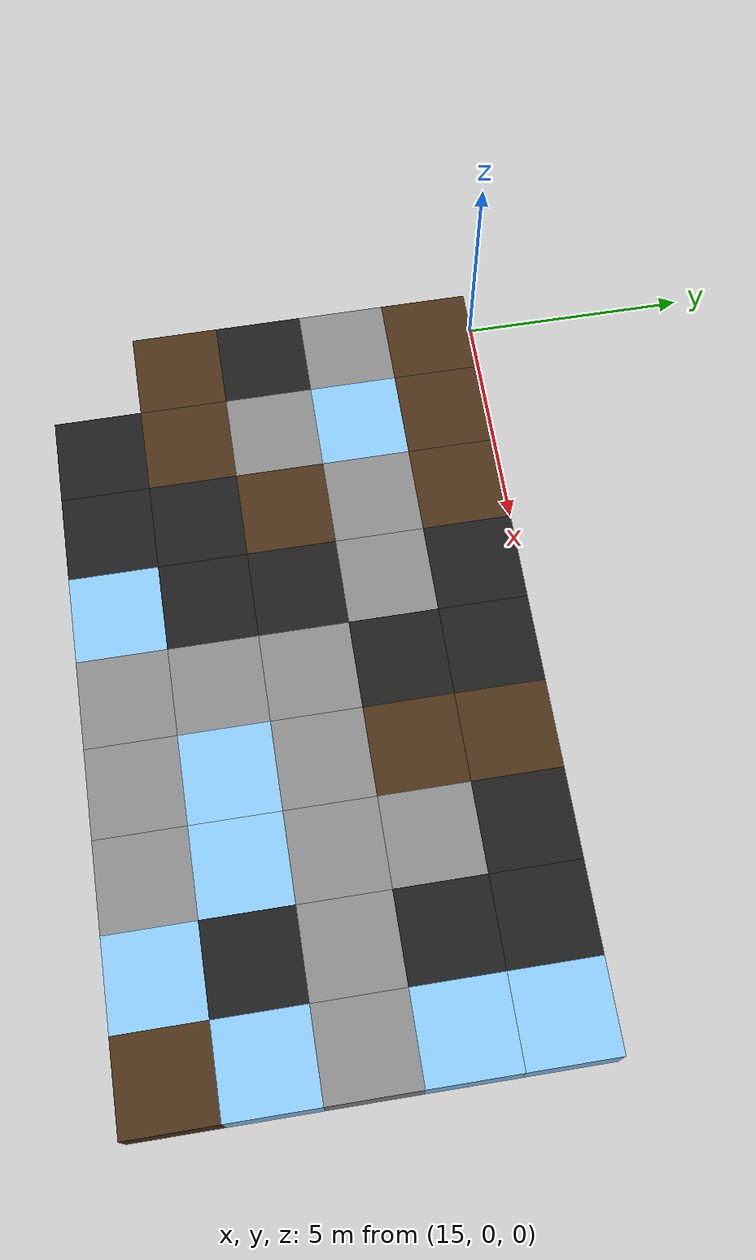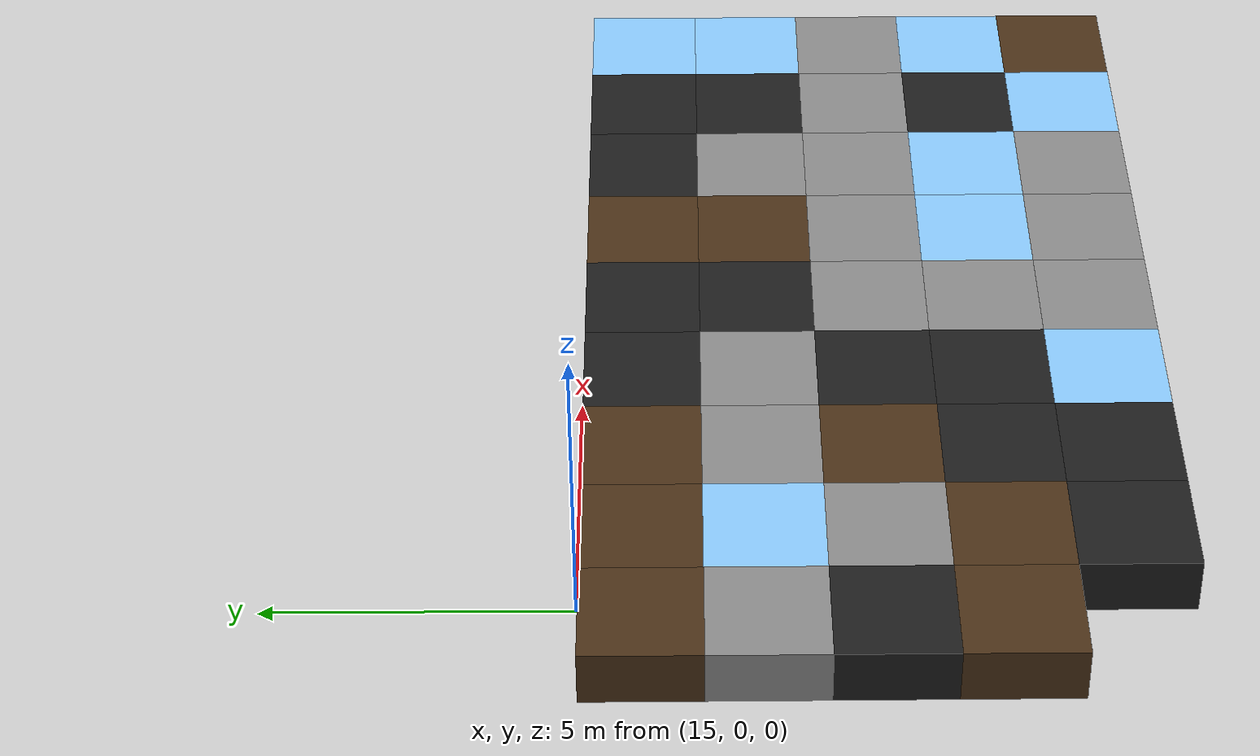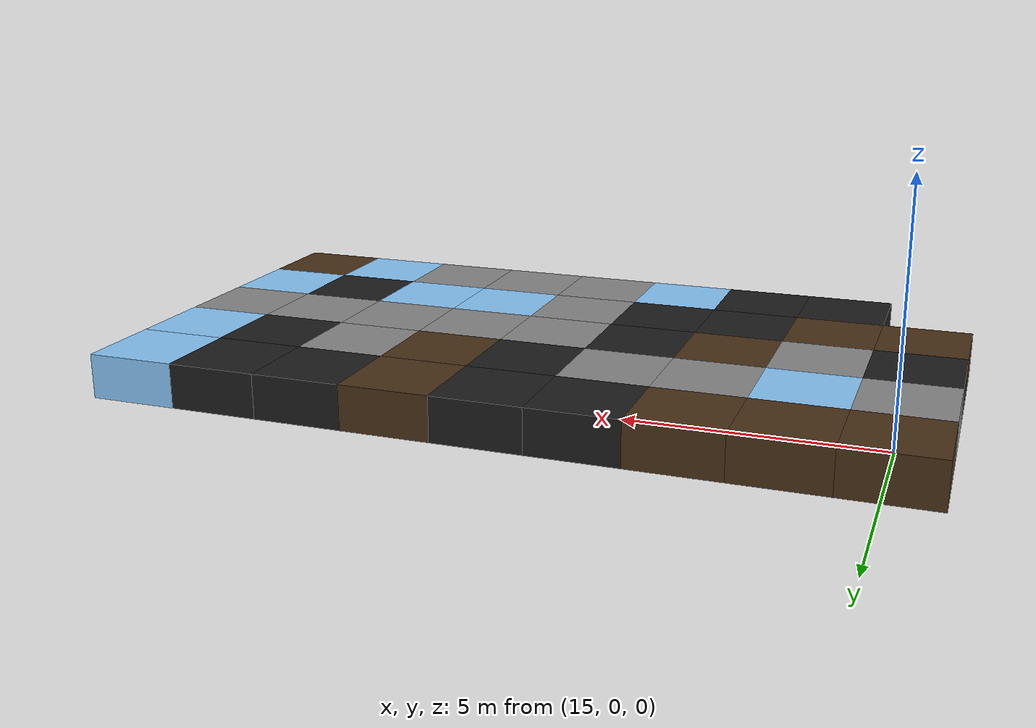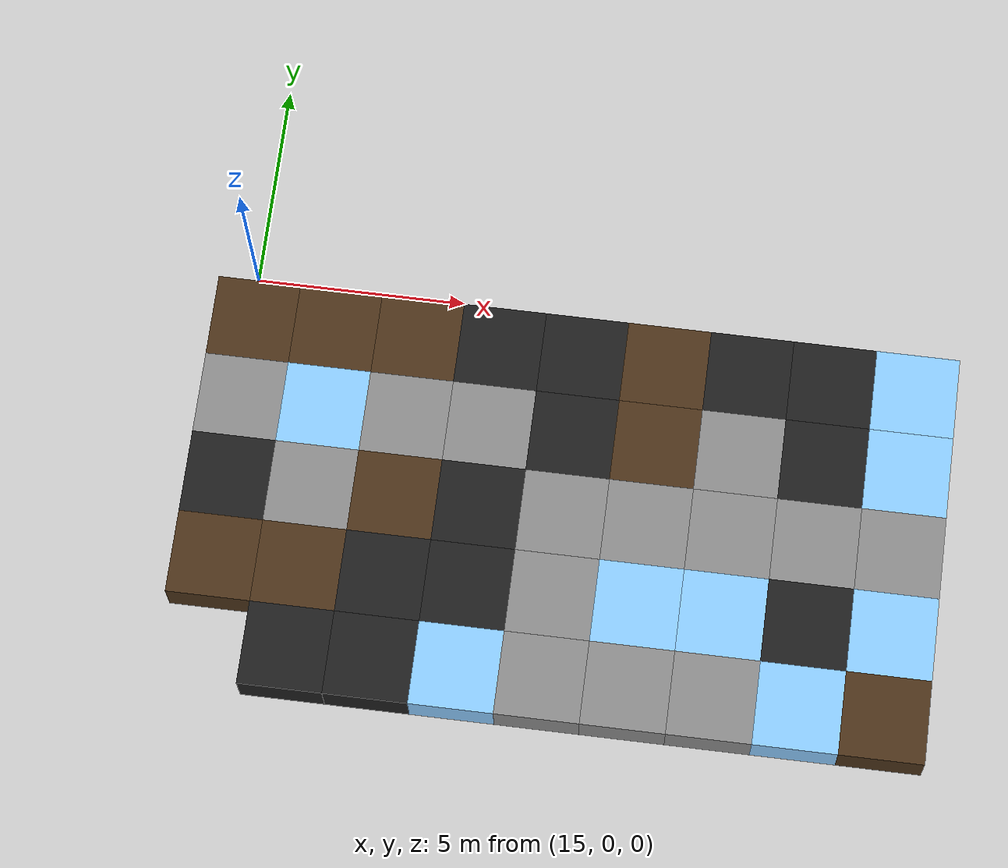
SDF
<sdf version="1.5">
 <world name="squares_example">
  <model name="tile_24_11">
   <static>true</static>
   <pose>17.000 -9.000 -0.500 0 0 0</pose>
   <link name="link">
    <collision name="col">
     <geometry><box><size>2.0 2.0 1.0</size></box></geometry>
     <surface>
      <friction>
       <ode><mu>0.4</mu><mu2>0.15</mu2><fdir1>1 0 0</fdir1><slip1>0.0</slip1><slip2>0.0</slip2></ode>
       <torsional>
        <coefficient>0.03</coefficient>
        <use_patch_radius>false</use_patch_radius>
        <surface_radius>0.12</surface_radius>
        <ode><slip>0.0</slip></ode>
       </torsional>
      </friction>
      <bounce><restitution_coefficient>0.0</restitution_coefficient><threshold>0.1</threshold></bounce>
      <contact>
       <ode><kp>1000000000.0</kp><kd>1000000.0</kd><max_vel>0.01</max_vel><min_depth>0.0</min_depth></ode>
      </contact>
     </surface>
    </collision>
    <visual name="visual">
     <geometry><box><size>2.0 2.0 1.0</size></box></geometry>
     <material>
      <diffuse>0.12 0.12 0.12 1</diffuse>
      <ambient>0 0 0 0</ambient>
      <specular>0 0 0 1</specular>
      <emissive>0 0 0 1</emissive>
     </material>
    </visual>
   </link>
  </model>
  <model name="tile_25_11">
   <static>true</static>
   <pose>19.000 -9.000 -0.500 0 0 0</pose>
   <link name="link">
    <collision name="col">
     <geometry><box><size>2.0 2.0 1.0</size></box></geometry>
     <surface>
      <friction>
       <ode><mu>0.4</mu><mu2>0.15</mu2><fdir1>1 0 0</fdir1><slip1>0.0</slip1><slip2>0.0</slip2></ode>
       <torsional>
        <coefficient>0.03</coefficient>
        <use_patch_radius>false</use_patch_radius>
        <surface_radius>0.12</surface_radius>
        <ode><slip>0.0</slip></ode>
       </torsional>
      </friction>
      <bounce><restitution_coefficient>0.0</restitution_coefficient><threshold>0.1</threshold></bounce>
      <contact>
       <ode><kp>1000000000.0</kp><kd>1000000.0</kd><max_vel>0.01</max_vel><min_depth>0.0</min_depth></ode>
      </contact>
     </surface>
    </collision>
    <visual name="visual">
     <geometry><box><size>2.0 2.0 1.0</size></box></geometry>
     <material>
      <diffuse>0.12 0.12 0.12 1</diffuse>
      <ambient>0 0 0 0</ambient>
      <specular>0 0 0 1</specular>
      <emissive>0 0 0 1</emissive>
     </material>
    </visual>
   </link>
  </model>
  <model name="tile_26_11">
   <static>true</static>
   <pose>21.000 -9.000 -0.500 0 0 0</pose>
   <link name="link">
    <collision name="col">
     <geometry><box><size>2.0 2.0 1.0</size></box></geometry>
     <surface>
      <friction>
       <ode><mu>0.03</mu><mu2>0.02</mu2><fdir1>1 0 0</fdir1><slip1>0.03</slip1><slip2>0.03</slip2></ode>
       <torsional>
        <coefficient>0.005</coefficient>
        <use_patch_radius>false</use_patch_radius>
        <surface_radius>0.12</surface_radius>
        <ode><slip>0.01</slip></ode>
       </torsional>
      </friction>
      <bounce><restitution_coefficient>0.0</restitution_coefficient><threshold>0.1</threshold></bounce>
      <contact>
       <ode><kp>10000000.0</kp><kd>1000.0</kd><max_vel>0.01</max_vel><min_depth>0.0</min_depth></ode>
      </contact>
     </surface>
    </collision>
    <visual name="visual">
     <geometry><box><size>2.0 2.0 1.0</size></box></geometry>
     <material>
      <diffuse>0.55 0.80 1.00 1</diffuse>
      <ambient>0 0 0 0</ambient>
      <specular>0 0 0 1</specular>
      <emissive>0 0 0 1</emissive>
     </material>
    </visual>
   </link>
  </model>
  <model name="tile_27_11">
   <static>true</static>
   <pose>23.000 -9.000 -0.500 0 0 0</pose>
   <link name="link">
    <collision name="col">
     <geometry><box><size>2.0 2.0 1.0</size></box></geometry>
     <surface>
      <friction>
       <ode><mu>0.8</mu><mu2>0.3</mu2><fdir1>1 0 0</fdir1><slip1>0.0</slip1><slip2>0.0</slip2></ode>
       <torsional>
        <coefficient>0.03</coefficient>
        <use_patch_radius>false</use_patch_radius>
        <surface_radius>0.12</surface_radius>
        <ode><slip>0.0</slip></ode>
       </torsional>
      </friction>
      <bounce><restitution_coefficient>0.0</restitution_coefficient><threshold>0.1</threshold></bounce>
      <contact>
       <ode><kp>10000000000.0</kp><kd>10000000.0</kd><max_vel>0.01</max_vel><min_depth>0.0</min_depth></ode>
      </contact>
     </surface>
    </collision>
    <visual name="visual">
     <geometry><box><size>2.0 2.0 1.0</size></box></geometry>
     <material>
      <diffuse>0.55 0.55 0.55 1</diffuse>
      <ambient>0 0 0 0</ambient>
      <specular>0 0 0 1</specular>
      <emissive>0 0 0 1</emissive>
     </material>
    </visual>
   </link>
  </model>
  <model name="tile_28_11">
   <static>true</static>
   <pose>25.000 -9.000 -0.500 0 0 0</pose>
   <link name="link">
    <collision name="col">
     <geometry><box><size>2.0 2.0 1.0</size></box></geometry>
     <surface>
      <friction>
       <ode><mu>0.8</mu><mu2>0.3</mu2><fdir1>1 0 0</fdir1><slip1>0.0</slip1><slip2>0.0</slip2></ode>
       <torsional>
        <coefficient>0.03</coefficient>
        <use_patch_radius>false</use_patch_radius>
        <surface_radius>0.12</surface_radius>
        <ode><slip>0.0</slip></ode>
       </torsional>
      </friction>
      <bounce><restitution_coefficient>0.0</restitution_coefficient><threshold>0.1</threshold></bounce>
      <contact>
       <ode><kp>10000000000.0</kp><kd>10000000.0</kd><max_vel>0.01</max_vel><min_depth>0.0</min_depth></ode>
      </contact>
     </surface>
    </collision>
    <visual name="visual">
     <geometry><box><size>2.0 2.0 1.0</size></box></geometry>
     <material>
      <diffuse>0.55 0.55 0.55 1</diffuse>
      <ambient>0 0 0 0</ambient>
      <specular>0 0 0 1</specular>
      <emissive>0 0 0 1</emissive>
     </material>
    </visual>
   </link>
  </model>
  <model name="tile_29_11">
   <static>true</static>
   <pose>27.000 -9.000 -0.500 0 0 0</pose>
   <link name="link">
    <collision name="col">
     <geometry><box><size>2.0 2.0 1.0</size></box></geometry>
     <surface>
      <friction>
       <ode><mu>0.8</mu><mu2>0.3</mu2><fdir1>1 0 0</fdir1><slip1>0.0</slip1><slip2>0.0</slip2></ode>
       <torsional>
        <coefficient>0.03</coefficient>
        <use_patch_radius>false</use_patch_radius>
        <surface_radius>0.12</surface_radius>
        <ode><slip>0.0</slip></ode>
       </torsional>
      </friction>
      <bounce><restitution_coefficient>0.0</restitution_coefficient><threshold>0.1</threshold></bounce>
      <contact>
       <ode><kp>10000000000.0</kp><kd>10000000.0</kd><max_vel>0.01</max_vel><min_depth>0.0</min_depth></ode>
      </contact>
     </surface>
    </collision>
    <visual name="visual">
     <geometry><box><size>2.0 2.0 1.0</size></box></geometry>
     <material>
      <diffuse>0.55 0.55 0.55 1</diffuse>
      <ambient>0 0 0 0</ambient>
      <specular>0 0 0 1</specular>
      <emissive>0 0 0 1</emissive>
     </material>
    </visual>
   </link>
  </model>
  <model name="tile_30_11">
   <static>true</static>
   <pose>29.000 -9.000 -0.500 0 0 0</pose>
   <link name="link">
    <collision name="col">
     <geometry><box><size>2.0 2.0 1.0</size></box></geometry>
     <surface>
      <friction>
       <ode><mu>0.03</mu><mu2>0.02</mu2><fdir1>1 0 0</fdir1><slip1>0.03</slip1><slip2>0.03</slip2></ode>
       <torsional>
        <coefficient>0.005</coefficient>
        <use_patch_radius>false</use_patch_radius>
        <surface_radius>0.12</surface_radius>
        <ode><slip>0.01</slip></ode>
       </torsional>
      </friction>
      <bounce><restitution_coefficient>0.0</restitution_coefficient><threshold>0.1</threshold></bounce>
      <contact>
       <ode><kp>10000000.0</kp><kd>1000.0</kd><max_vel>0.01</max_vel><min_depth>0.0</min_depth></ode>
      </contact>
     </surface>
    </collision>
    <visual name="visual">
     <geometry><box><size>2.0 2.0 1.0</size></box></geometry>
     <material>
      <diffuse>0.55 0.80 1.00 1</diffuse>
      <ambient>0 0 0 0</ambient>
      <specular>0 0 0 1</specular>
      <emissive>0 0 0 1</emissive>
     </material>
    </visual>
   </link>
  </model>
  <model name="tile_31_11">
   <static>true</static>
   <pose>31.000 -9.000 -0.500 0 0 0</pose>
   <link name="link">
    <collision name="col">
     <geometry><box><size>2.0 2.0 1.0</size></box></geometry>
     <surface>
      <friction>
       <ode><mu>0.6</mu><mu2>0.4</mu2><fdir1>1 0 0</fdir1><slip1>0.08</slip1><slip2>0.08</slip2></ode>
       <torsional>
        <coefficient>0.03</coefficient>
        <use_patch_radius>false</use_patch_radius>
        <surface_radius>0.12</surface_radius>
        <ode><slip>0.0</slip></ode>
       </torsional>
      </friction>
      <bounce><restitution_coefficient>0.0</restitution_coefficient><threshold>0.1</threshold></bounce>
      <contact>
       <ode><kp>1000000.0</kp><kd>10000.0</kd><max_vel>0.01</max_vel><min_depth>0.0</min_depth></ode>
      </contact>
     </surface>
    </collision>
    <visual name="visual">
     <geometry><box><size>2.0 2.0 1.0</size></box></geometry>
     <material>
      <diffuse>0.30 0.20 0.10 1</diffuse>
      <ambient>0 0 0 0</ambient>
      <specular>0 0 0 1</specular>
      <emissive>0 0 0 1</emissive>
     </material>
    </visual>
   </link>
  </model>
  <model name="tile_23_12">
   <static>true</static>
   <pose>15.000 -7.000 -0.500 0 0 0</pose>
   <link name="link">
    <collision name="col">
     <geometry><box><size>2.0 2.0 1.0</size></box></geometry>
     <surface>
      <friction>
       <ode><mu>0.6</mu><mu2>0.4</mu2><fdir1>1 0 0</fdir1><slip1>0.08</slip1><slip2>0.08</slip2></ode>
       <torsional>
        <coefficient>0.03</coefficient>
        <use_patch_radius>false</use_patch_radius>
        <surface_radius>0.12</surface_radius>
        <ode><slip>0.0</slip></ode>
       </torsional>
      </friction>
      <bounce><restitution_coefficient>0.0</restitution_coefficient><threshold>0.1</threshold></bounce>
      <contact>
       <ode><kp>1000000.0</kp><kd>10000.0</kd><max_vel>0.01</max_vel><min_depth>0.0</min_depth></ode>
      </contact>
     </surface>
    </collision>
    <visual name="visual">
     <geometry><box><size>2.0 2.0 1.0</size></box></geometry>
     <material>
      <diffuse>0.30 0.20 0.10 1</diffuse>
      <ambient>0 0 0 0</ambient>
      <specular>0 0 0 1</specular>
      <emissive>0 0 0 1</emissive>
     </material>
    </visual>
   </link>
  </model>
  <model name="tile_24_12">
   <static>true</static>
   <pose>17.000 -7.000 -0.500 0 0 0</pose>
   <link name="link">
    <collision name="col">
     <geometry><box><size>2.0 2.0 1.0</size></box></geometry>
     <surface>
      <friction>
       <ode><mu>0.6</mu><mu2>0.4</mu2><fdir1>1 0 0</fdir1><slip1>0.08</slip1><slip2>0.08</slip2></ode>
       <torsional>
        <coefficient>0.03</coefficient>
        <use_patch_radius>false</use_patch_radius>
        <surface_radius>0.12</surface_radius>
        <ode><slip>0.0</slip></ode>
       </torsional>
      </friction>
      <bounce><restitution_coefficient>0.0</restitution_coefficient><threshold>0.1</threshold></bounce>
      <contact>
       <ode><kp>1000000.0</kp><kd>10000.0</kd><max_vel>0.01</max_vel><min_depth>0.0</min_depth></ode>
      </contact>
     </surface>
    </collision>
    <visual name="visual">
     <geometry><box><size>2.0 2.0 1.0</size></box></geometry>
     <material>
      <diffuse>0.30 0.20 0.10 1</diffuse>
      <ambient>0 0 0 0</ambient>
      <specular>0 0 0 1</specular>
      <emissive>0 0 0 1</emissive>
     </material>
    </visual>
   </link>
  </model>
  <model name="tile_25_12">
   <static>true</static>
   <pose>19.000 -7.000 -0.500 0 0 0</pose>
   <link name="link">
    <collision name="col">
     <geometry><box><size>2.0 2.0 1.0</size></box></geometry>
     <surface>
      <friction>
       <ode><mu>0.4</mu><mu2>0.15</mu2><fdir1>1 0 0</fdir1><slip1>0.0</slip1><slip2>0.0</slip2></ode>
       <torsional>
        <coefficient>0.03</coefficient>
        <use_patch_radius>false</use_patch_radius>
        <surface_radius>0.12</surface_radius>
        <ode><slip>0.0</slip></ode>
       </torsional>
      </friction>
      <bounce><restitution_coefficient>0.0</restitution_coefficient><threshold>0.1</threshold></bounce>
      <contact>
       <ode><kp>1000000000.0</kp><kd>1000000.0</kd><max_vel>0.01</max_vel><min_depth>0.0</min_depth></ode>
      </contact>
     </surface>
    </collision>
    <visual name="visual">
     <geometry><box><size>2.0 2.0 1.0</size></box></geometry>
     <material>
      <diffuse>0.12 0.12 0.12 1</diffuse>
      <ambient>0 0 0 0</ambient>
      <specular>0 0 0 1</specular>
      <emissive>0 0 0 1</emissive>
     </material>
    </visual>
   </link>
  </model>
  <model name="tile_26_12">
   <static>true</static>
   <pose>21.000 -7.000 -0.500 0 0 0</pose>
   <link name="link">
    <collision name="col">
     <geometry><box><size>2.0 2.0 1.0</size></box></geometry>
     <surface>
      <friction>
       <ode><mu>0.4</mu><mu2>0.15</mu2><fdir1>1 0 0</fdir1><slip1>0.0</slip1><slip2>0.0</slip2></ode>
       <torsional>
        <coefficient>0.03</coefficient>
        <use_patch_radius>false</use_patch_radius>
        <surface_radius>0.12</surface_radius>
        <ode><slip>0.0</slip></ode>
       </torsional>
      </friction>
      <bounce><restitution_coefficient>0.0</restitution_coefficient><threshold>0.1</threshold></bounce>
      <contact>
       <ode><kp>1000000000.0</kp><kd>1000000.0</kd><max_vel>0.01</max_vel><min_depth>0.0</min_depth></ode>
      </contact>
     </surface>
    </collision>
    <visual name="visual">
     <geometry><box><size>2.0 2.0 1.0</size></box></geometry>
     <material>
      <diffuse>0.12 0.12 0.12 1</diffuse>
      <ambient>0 0 0 0</ambient>
      <specular>0 0 0 1</specular>
      <emissive>0 0 0 1</emissive>
     </material>
    </visual>
   </link>
  </model>
  <model name="tile_27_12">
   <static>true</static>
   <pose>23.000 -7.000 -0.500 0 0 0</pose>
   <link name="link">
    <collision name="col">
     <geometry><box><size>2.0 2.0 1.0</size></box></geometry>
     <surface>
      <friction>
       <ode><mu>0.8</mu><mu2>0.3</mu2><fdir1>1 0 0</fdir1><slip1>0.0</slip1><slip2>0.0</slip2></ode>
       <torsional>
        <coefficient>0.03</coefficient>
        <use_patch_radius>false</use_patch_radius>
        <surface_radius>0.12</surface_radius>
        <ode><slip>0.0</slip></ode>
       </torsional>
      </friction>
      <bounce><restitution_coefficient>0.0</restitution_coefficient><threshold>0.1</threshold></bounce>
      <contact>
       <ode><kp>10000000000.0</kp><kd>10000000.0</kd><max_vel>0.01</max_vel><min_depth>0.0</min_depth></ode>
      </contact>
     </surface>
    </collision>
    <visual name="visual">
     <geometry><box><size>2.0 2.0 1.0</size></box></geometry>
     <material>
      <diffuse>0.55 0.55 0.55 1</diffuse>
      <ambient>0 0 0 0</ambient>
      <specular>0 0 0 1</specular>
      <emissive>0 0 0 1</emissive>
     </material>
    </visual>
   </link>
  </model>
  <model name="tile_28_12">
   <static>true</static>
   <pose>25.000 -7.000 -0.500 0 0 0</pose>
   <link name="link">
    <collision name="col">
     <geometry><box><size>2.0 2.0 1.0</size></box></geometry>
     <surface>
      <friction>
       <ode><mu>0.03</mu><mu2>0.02</mu2><fdir1>1 0 0</fdir1><slip1>0.03</slip1><slip2>0.03</slip2></ode>
       <torsional>
        <coefficient>0.005</coefficient>
        <use_patch_radius>false</use_patch_radius>
        <surface_radius>0.12</surface_radius>
        <ode><slip>0.01</slip></ode>
       </torsional>
      </friction>
      <bounce><restitution_coefficient>0.0</restitution_coefficient><threshold>0.1</threshold></bounce>
      <contact>
       <ode><kp>10000000.0</kp><kd>1000.0</kd><max_vel>0.01</max_vel><min_depth>0.0</min_depth></ode>
      </contact>
     </surface>
    </collision>
    <visual name="visual">
     <geometry><box><size>2.0 2.0 1.0</size></box></geometry>
     <material>
      <diffuse>0.55 0.80 1.00 1</diffuse>
      <ambient>0 0 0 0</ambient>
      <specular>0 0 0 1</specular>
      <emissive>0 0 0 1</emissive>
     </material>
    </visual>
   </link>
  </model>
  <model name="tile_29_12">
   <static>true</static>
   <pose>27.000 -7.000 -0.500 0 0 0</pose>
   <link name="link">
    <collision name="col">
     <geometry><box><size>2.0 2.0 1.0</size></box></geometry>
     <surface>
      <friction>
       <ode><mu>0.03</mu><mu2>0.02</mu2><fdir1>1 0 0</fdir1><slip1>0.03</slip1><slip2>0.03</slip2></ode>
       <torsional>
        <coefficient>0.005</coefficient>
        <use_patch_radius>false</use_patch_radius>
        <surface_radius>0.12</surface_radius>
        <ode><slip>0.01</slip></ode>
       </torsional>
      </friction>
      <bounce><restitution_coefficient>0.0</restitution_coefficient><threshold>0.1</threshold></bounce>
      <contact>
       <ode><kp>10000000.0</kp><kd>1000.0</kd><max_vel>0.01</max_vel><min_depth>0.0</min_depth></ode>
      </contact>
     </surface>
    </collision>
    <visual name="visual">
     <geometry><box><size>2.0 2.0 1.0</size></box></geometry>
     <material>
      <diffuse>0.55 0.80 1.00 1</diffuse>
      <ambient>0 0 0 0</ambient>
      <specular>0 0 0 1</specular>
      <emissive>0 0 0 1</emissive>
     </material>
    </visual>
   </link>
  </model>
  <model name="tile_30_12">
   <static>true</static>
   <pose>29.000 -7.000 -0.500 0 0 0</pose>
   <link name="link">
    <collision name="col">
     <geometry><box><size>2.0 2.0 1.0</size></box></geometry>
     <surface>
      <friction>
       <ode><mu>0.4</mu><mu2>0.15</mu2><fdir1>1 0 0</fdir1><slip1>0.0</slip1><slip2>0.0</slip2></ode>
       <torsional>
        <coefficient>0.03</coefficient>
        <use_patch_radius>false</use_patch_radius>
        <surface_radius>0.12</surface_radius>
        <ode><slip>0.0</slip></ode>
       </torsional>
      </friction>
      <bounce><restitution_coefficient>0.0</restitution_coefficient><threshold>0.1</threshold></bounce>
      <contact>
       <ode><kp>1000000000.0</kp><kd>1000000.0</kd><max_vel>0.01</max_vel><min_depth>0.0</min_depth></ode>
      </contact>
     </surface>
    </collision>
    <visual name="visual">
     <geometry><box><size>2.0 2.0 1.0</size></box></geometry>
     <material>
      <diffuse>0.12 0.12 0.12 1</diffuse>
      <ambient>0 0 0 0</ambient>
      <specular>0 0 0 1</specular>
      <emissive>0 0 0 1</emissive>
     </material>
    </visual>
   </link>
  </model>
  <model name="tile_31_12">
   <static>true</static>
   <pose>31.000 -7.000 -0.500 0 0 0</pose>
   <link name="link">
    <collision name="col">
     <geometry><box><size>2.0 2.0 1.0</size></box></geometry>
     <surface>
      <friction>
       <ode><mu>0.03</mu><mu2>0.02</mu2><fdir1>1 0 0</fdir1><slip1>0.03</slip1><slip2>0.03</slip2></ode>
       <torsional>
        <coefficient>0.005</coefficient>
        <use_patch_radius>false</use_patch_radius>
        <surface_radius>0.12</surface_radius>
        <ode><slip>0.01</slip></ode>
       </torsional>
      </friction>
      <bounce><restitution_coefficient>0.0</restitution_coefficient><threshold>0.1</threshold></bounce>
      <contact>
       <ode><kp>10000000.0</kp><kd>1000.0</kd><max_vel>0.01</max_vel><min_depth>0.0</min_depth></ode>
      </contact>
     </surface>
    </collision>
    <visual name="visual">
     <geometry><box><size>2.0 2.0 1.0</size></box></geometry>
     <material>
      <diffuse>0.55 0.80 1.00 1</diffuse>
      <ambient>0 0 0 0</ambient>
      <specular>0 0 0 1</specular>
      <emissive>0 0 0 1</emissive>
     </material>
    </visual>
   </link>
  </model>
  <model name="tile_23_13">
   <static>true</static>
   <pose>15.000 -5.000 -0.500 0 0 0</pose>
   <link name="link">
    <collision name="col">
     <geometry><box><size>2.0 2.0 1.0</size></box></geometry>
     <surface>
      <friction>
       <ode><mu>0.4</mu><mu2>0.15</mu2><fdir1>1 0 0</fdir1><slip1>0.0</slip1><slip2>0.0</slip2></ode>
       <torsional>
        <coefficient>0.03</coefficient>
        <use_patch_radius>false</use_patch_radius>
        <surface_radius>0.12</surface_radius>
        <ode><slip>0.0</slip></ode>
       </torsional>
      </friction>
      <bounce><restitution_coefficient>0.0</restitution_coefficient><threshold>0.1</threshold></bounce>
      <contact>
       <ode><kp>1000000000.0</kp><kd>1000000.0</kd><max_vel>0.01</max_vel><min_depth>0.0</min_depth></ode>
      </contact>
     </surface>
    </collision>
    <visual name="visual">
     <geometry><box><size>2.0 2.0 1.0</size></box></geometry>
     <material>
      <diffuse>0.12 0.12 0.12 1</diffuse>
      <ambient>0 0 0 0</ambient>
      <specular>0 0 0 1</specular>
      <emissive>0 0 0 1</emissive>
     </material>
    </visual>
   </link>
  </model>
  <model name="tile_24_13">
   <static>true</static>
   <pose>17.000 -5.000 -0.500 0 0 0</pose>
   <link name="link">
    <collision name="col">
     <geometry><box><size>2.0 2.0 1.0</size></box></geometry>
     <surface>
      <friction>
       <ode><mu>0.8</mu><mu2>0.3</mu2><fdir1>1 0 0</fdir1><slip1>0.0</slip1><slip2>0.0</slip2></ode>
       <torsional>
        <coefficient>0.03</coefficient>
        <use_patch_radius>false</use_patch_radius>
        <surface_radius>0.12</surface_radius>
        <ode><slip>0.0</slip></ode>
       </torsional>
      </friction>
      <bounce><restitution_coefficient>0.0</restitution_coefficient><threshold>0.1</threshold></bounce>
      <contact>
       <ode><kp>10000000000.0</kp><kd>10000000.0</kd><max_vel>0.01</max_vel><min_depth>0.0</min_depth></ode>
      </contact>
     </surface>
    </collision>
    <visual name="visual">
     <geometry><box><size>2.0 2.0 1.0</size></box></geometry>
     <material>
      <diffuse>0.55 0.55 0.55 1</diffuse>
      <ambient>0 0 0 0</ambient>
      <specular>0 0 0 1</specular>
      <emissive>0 0 0 1</emissive>
     </material>
    </visual>
   </link>
  </model>
  <model name="tile_25_13">
   <static>true</static>
   <pose>19.000 -5.000 -0.500 0 0 0</pose>
   <link name="link">
    <collision name="col">
     <geometry><box><size>2.0 2.0 1.0</size></box></geometry>
     <surface>
      <friction>
       <ode><mu>0.6</mu><mu2>0.4</mu2><fdir1>1 0 0</fdir1><slip1>0.08</slip1><slip2>0.08</slip2></ode>
       <torsional>
        <coefficient>0.03</coefficient>
        <use_patch_radius>false</use_patch_radius>
        <surface_radius>0.12</surface_radius>
        <ode><slip>0.0</slip></ode>
       </torsional>
      </friction>
      <bounce><restitution_coefficient>0.0</restitution_coefficient><threshold>0.1</threshold></bounce>
      <contact>
       <ode><kp>1000000.0</kp><kd>10000.0</kd><max_vel>0.01</max_vel><min_depth>0.0</min_depth></ode>
      </contact>
     </surface>
    </collision>
    <visual name="visual">
     <geometry><box><size>2.0 2.0 1.0</size></box></geometry>
     <material>
      <diffuse>0.30 0.20 0.10 1</diffuse>
      <ambient>0 0 0 0</ambient>
      <specular>0 0 0 1</specular>
      <emissive>0 0 0 1</emissive>
     </material>
    </visual>
   </link>
  </model>
  <model name="tile_26_13">
   <static>true</static>
   <pose>21.000 -5.000 -0.500 0 0 0</pose>
   <link name="link">
    <collision name="col">
     <geometry><box><size>2.0 2.0 1.0</size></box></geometry>
     <surface>
      <friction>
       <ode><mu>0.4</mu><mu2>0.15</mu2><fdir1>1 0 0</fdir1><slip1>0.0</slip1><slip2>0.0</slip2></ode>
       <torsional>
        <coefficient>0.03</coefficient>
        <use_patch_radius>false</use_patch_radius>
        <surface_radius>0.12</surface_radius>
        <ode><slip>0.0</slip></ode>
       </torsional>
      </friction>
      <bounce><restitution_coefficient>0.0</restitution_coefficient><threshold>0.1</threshold></bounce>
      <contact>
       <ode><kp>1000000000.0</kp><kd>1000000.0</kd><max_vel>0.01</max_vel><min_depth>0.0</min_depth></ode>
      </contact>
     </surface>
    </collision>
    <visual name="visual">
     <geometry><box><size>2.0 2.0 1.0</size></box></geometry>
     <material>
      <diffuse>0.12 0.12 0.12 1</diffuse>
      <ambient>0 0 0 0</ambient>
      <specular>0 0 0 1</specular>
      <emissive>0 0 0 1</emissive>
     </material>
    </visual>
   </link>
  </model>
  <model name="tile_27_13">
   <static>true</static>
   <pose>23.000 -5.000 -0.500 0 0 0</pose>
   <link name="link">
    <collision name="col">
     <geometry><box><size>2.0 2.0 1.0</size></box></geometry>
     <surface>
      <friction>
       <ode><mu>0.8</mu><mu2>0.3</mu2><fdir1>1 0 0</fdir1><slip1>0.0</slip1><slip2>0.0</slip2></ode>
       <torsional>
        <coefficient>0.03</coefficient>
        <use_patch_radius>false</use_patch_radius>
        <surface_radius>0.12</surface_radius>
        <ode><slip>0.0</slip></ode>
       </torsional>
      </friction>
      <bounce><restitution_coefficient>0.0</restitution_coefficient><threshold>0.1</threshold></bounce>
      <contact>
       <ode><kp>10000000000.0</kp><kd>10000000.0</kd><max_vel>0.01</max_vel><min_depth>0.0</min_depth></ode>
      </contact>
     </surface>
    </collision>
    <visual name="visual">
     <geometry><box><size>2.0 2.0 1.0</size></box></geometry>
     <material>
      <diffuse>0.55 0.55 0.55 1</diffuse>
      <ambient>0 0 0 0</ambient>
      <specular>0 0 0 1</specular>
      <emissive>0 0 0 1</emissive>
     </material>
    </visual>
   </link>
  </model>
  <model name="tile_28_13">
   <static>true</static>
   <pose>25.000 -5.000 -0.500 0 0 0</pose>
   <link name="link">
    <collision name="col">
     <geometry><box><size>2.0 2.0 1.0</size></box></geometry>
     <surface>
      <friction>
       <ode><mu>0.8</mu><mu2>0.3</mu2><fdir1>1 0 0</fdir1><slip1>0.0</slip1><slip2>0.0</slip2></ode>
       <torsional>
        <coefficient>0.03</coefficient>
        <use_patch_radius>false</use_patch_radius>
        <surface_radius>0.12</surface_radius>
        <ode><slip>0.0</slip></ode>
       </torsional>
      </friction>
      <bounce><restitution_coefficient>0.0</restitution_coefficient><threshold>0.1</threshold></bounce>
      <contact>
       <ode><kp>10000000000.0</kp><kd>10000000.0</kd><max_vel>0.01</max_vel><min_depth>0.0</min_depth></ode>
      </contact>
     </surface>
    </collision>
    <visual name="visual">
     <geometry><box><size>2.0 2.0 1.0</size></box></geometry>
     <material>
      <diffuse>0.55 0.55 0.55 1</diffuse>
      <ambient>0 0 0 0</ambient>
      <specular>0 0 0 1</specular>
      <emissive>0 0 0 1</emissive>
     </material>
    </visual>
   </link>
  </model>
  <model name="tile_29_13">
   <static>true</static>
   <pose>27.000 -5.000 -0.500 0 0 0</pose>
   <link name="link">
    <collision name="col">
     <geometry><box><size>2.0 2.0 1.0</size></box></geometry>
     <surface>
      <friction>
       <ode><mu>0.8</mu><mu2>0.3</mu2><fdir1>1 0 0</fdir1><slip1>0.0</slip1><slip2>0.0</slip2></ode>
       <torsional>
        <coefficient>0.03</coefficient>
        <use_patch_radius>false</use_patch_radius>
        <surface_radius>0.12</surface_radius>
        <ode><slip>0.0</slip></ode>
       </torsional>
      </friction>
      <bounce><restitution_coefficient>0.0</restitution_coefficient><threshold>0.1</threshold></bounce>
      <contact>
       <ode><kp>10000000000.0</kp><kd>10000000.0</kd><max_vel>0.01</max_vel><min_depth>0.0</min_depth></ode>
      </contact>
     </surface>
    </collision>
    <visual name="visual">
     <geometry><box><size>2.0 2.0 1.0</size></box></geometry>
     <material>
      <diffuse>0.55 0.55 0.55 1</diffuse>
      <ambient>0 0 0 0</ambient>
      <specular>0 0 0 1</specular>
      <emissive>0 0 0 1</emissive>
     </material>
    </visual>
   </link>
  </model>
  <model name="tile_30_13">
   <static>true</static>
   <pose>29.000 -5.000 -0.500 0 0 0</pose>
   <link name="link">
    <collision name="col">
     <geometry><box><size>2.0 2.0 1.0</size></box></geometry>
     <surface>
      <friction>
       <ode><mu>0.8</mu><mu2>0.3</mu2><fdir1>1 0 0</fdir1><slip1>0.0</slip1><slip2>0.0</slip2></ode>
       <torsional>
        <coefficient>0.03</coefficient>
        <use_patch_radius>false</use_patch_radius>
        <surface_radius>0.12</surface_radius>
        <ode><slip>0.0</slip></ode>
       </torsional>
      </friction>
      <bounce><restitution_coefficient>0.0</restitution_coefficient><threshold>0.1</threshold></bounce>
      <contact>
       <ode><kp>10000000000.0</kp><kd>10000000.0</kd><max_vel>0.01</max_vel><min_depth>0.0</min_depth></ode>
      </contact>
     </surface>
    </collision>
    <visual name="visual">
     <geometry><box><size>2.0 2.0 1.0</size></box></geometry>
     <material>
      <diffuse>0.55 0.55 0.55 1</diffuse>
      <ambient>0 0 0 0</ambient>
      <specular>0 0 0 1</specular>
      <emissive>0 0 0 1</emissive>
     </material>
    </visual>
   </link>
  </model>
  <model name="tile_31_13">
   <static>true</static>
   <pose>31.000 -5.000 -0.500 0 0 0</pose>
   <link name="link">
    <collision name="col">
     <geometry><box><size>2.0 2.0 1.0</size></box></geometry>
     <surface>
      <friction>
       <ode><mu>0.8</mu><mu2>0.3</mu2><fdir1>1 0 0</fdir1><slip1>0.0</slip1><slip2>0.0</slip2></ode>
       <torsional>
        <coefficient>0.03</coefficient>
        <use_patch_radius>false</use_patch_radius>
        <surface_radius>0.12</surface_radius>
        <ode><slip>0.0</slip></ode>
       </torsional>
      </friction>
      <bounce><restitution_coefficient>0.0</restitution_coefficient><threshold>0.1</threshold></bounce>
      <contact>
       <ode><kp>10000000000.0</kp><kd>10000000.0</kd><max_vel>0.01</max_vel><min_depth>0.0</min_depth></ode>
      </contact>
     </surface>
    </collision>
    <visual name="visual">
     <geometry><box><size>2.0 2.0 1.0</size></box></geometry>
     <material>
      <diffuse>0.55 0.55 0.55 1</diffuse>
      <ambient>0 0 0 0</ambient>
      <specular>0 0 0 1</specular>
      <emissive>0 0 0 1</emissive>
     </material>
    </visual>
   </link>
  </model>
  <model name="tile_23_14">
   <static>true</static>
   <pose>15.000 -3.000 -0.500 0 0 0</pose>
   <link name="link">
    <collision name="col">
     <geometry><box><size>2.0 2.0 1.0</size></box></geometry>
     <surface>
      <friction>
       <ode><mu>0.8</mu><mu2>0.3</mu2><fdir1>1 0 0</fdir1><slip1>0.0</slip1><slip2>0.0</slip2></ode>
       <torsional>
        <coefficient>0.03</coefficient>
        <use_patch_radius>false</use_patch_radius>
        <surface_radius>0.12</surface_radius>
        <ode><slip>0.0</slip></ode>
       </torsional>
      </friction>
      <bounce><restitution_coefficient>0.0</restitution_coefficient><threshold>0.1</threshold></bounce>
      <contact>
       <ode><kp>10000000000.0</kp><kd>10000000.0</kd><max_vel>0.01</max_vel><min_depth>0.0</min_depth></ode>
      </contact>
     </surface>
    </collision>
    <visual name="visual">
     <geometry><box><size>2.0 2.0 1.0</size></box></geometry>
     <material>
      <diffuse>0.55 0.55 0.55 1</diffuse>
      <ambient>0 0 0 0</ambient>
      <specular>0 0 0 1</specular>
      <emissive>0 0 0 1</emissive>
     </material>
    </visual>
   </link>
  </model>
  <model name="tile_24_14">
   <static>true</static>
   <pose>17.000 -3.000 -0.500 0 0 0</pose>
   <link name="link">
    <collision name="col">
     <geometry><box><size>2.0 2.0 1.0</size></box></geometry>
     <surface>
      <friction>
       <ode><mu>0.03</mu><mu2>0.02</mu2><fdir1>1 0 0</fdir1><slip1>0.03</slip1><slip2>0.03</slip2></ode>
       <torsional>
        <coefficient>0.005</coefficient>
        <use_patch_radius>false</use_patch_radius>
        <surface_radius>0.12</surface_radius>
        <ode><slip>0.01</slip></ode>
       </torsional>
      </friction>
      <bounce><restitution_coefficient>0.0</restitution_coefficient><threshold>0.1</threshold></bounce>
      <contact>
       <ode><kp>10000000.0</kp><kd>1000.0</kd><max_vel>0.01</max_vel><min_depth>0.0</min_depth></ode>
      </contact>
     </surface>
    </collision>
    <visual name="visual">
     <geometry><box><size>2.0 2.0 1.0</size></box></geometry>
     <material>
      <diffuse>0.55 0.80 1.00 1</diffuse>
      <ambient>0 0 0 0</ambient>
      <specular>0 0 0 1</specular>
      <emissive>0 0 0 1</emissive>
     </material>
    </visual>
   </link>
  </model>
  <model name="tile_25_14">
   <static>true</static>
   <pose>19.000 -3.000 -0.500 0 0 0</pose>
   <link name="link">
    <collision name="col">
     <geometry><box><size>2.0 2.0 1.0</size></box></geometry>
     <surface>
      <friction>
       <ode><mu>0.8</mu><mu2>0.3</mu2><fdir1>1 0 0</fdir1><slip1>0.0</slip1><slip2>0.0</slip2></ode>
       <torsional>
        <coefficient>0.03</coefficient>
        <use_patch_radius>false</use_patch_radius>
        <surface_radius>0.12</surface_radius>
        <ode><slip>0.0</slip></ode>
       </torsional>
      </friction>
      <bounce><restitution_coefficient>0.0</restitution_coefficient><threshold>0.1</threshold></bounce>
      <contact>
       <ode><kp>10000000000.0</kp><kd>10000000.0</kd><max_vel>0.01</max_vel><min_depth>0.0</min_depth></ode>
      </contact>
     </surface>
    </collision>
    <visual name="visual">
     <geometry><box><size>2.0 2.0 1.0</size></box></geometry>
     <material>
      <diffuse>0.55 0.55 0.55 1</diffuse>
      <ambient>0 0 0 0</ambient>
      <specular>0 0 0 1</specular>
      <emissive>0 0 0 1</emissive>
     </material>
    </visual>
   </link>
  </model>
  <model name="tile_26_14">
   <static>true</static>
   <pose>21.000 -3.000 -0.500 0 0 0</pose>
   <link name="link">
    <collision name="col">
     <geometry><box><size>2.0 2.0 1.0</size></box></geometry>
     <surface>
      <friction>
       <ode><mu>0.8</mu><mu2>0.3</mu2><fdir1>1 0 0</fdir1><slip1>0.0</slip1><slip2>0.0</slip2></ode>
       <torsional>
        <coefficient>0.03</coefficient>
        <use_patch_radius>false</use_patch_radius>
        <surface_radius>0.12</surface_radius>
        <ode><slip>0.0</slip></ode>
       </torsional>
      </friction>
      <bounce><restitution_coefficient>0.0</restitution_coefficient><threshold>0.1</threshold></bounce>
      <contact>
       <ode><kp>10000000000.0</kp><kd>10000000.0</kd><max_vel>0.01</max_vel><min_depth>0.0</min_depth></ode>
      </contact>
     </surface>
    </collision>
    <visual name="visual">
     <geometry><box><size>2.0 2.0 1.0</size></box></geometry>
     <material>
      <diffuse>0.55 0.55 0.55 1</diffuse>
      <ambient>0 0 0 0</ambient>
      <specular>0 0 0 1</specular>
      <emissive>0 0 0 1</emissive>
     </material>
    </visual>
   </link>
  </model>
  <model name="tile_27_14">
   <static>true</static>
   <pose>23.000 -3.000 -0.500 0 0 0</pose>
   <link name="link">
    <collision name="col">
     <geometry><box><size>2.0 2.0 1.0</size></box></geometry>
     <surface>
      <friction>
       <ode><mu>0.4</mu><mu2>0.15</mu2><fdir1>1 0 0</fdir1><slip1>0.0</slip1><slip2>0.0</slip2></ode>
       <torsional>
        <coefficient>0.03</coefficient>
        <use_patch_radius>false</use_patch_radius>
        <surface_radius>0.12</surface_radius>
        <ode><slip>0.0</slip></ode>
       </torsional>
      </friction>
      <bounce><restitution_coefficient>0.0</restitution_coefficient><threshold>0.1</threshold></bounce>
      <contact>
       <ode><kp>1000000000.0</kp><kd>1000000.0</kd><max_vel>0.01</max_vel><min_depth>0.0</min_depth></ode>
      </contact>
     </surface>
    </collision>
    <visual name="visual">
     <geometry><box><size>2.0 2.0 1.0</size></box></geometry>
     <material>
      <diffuse>0.12 0.12 0.12 1</diffuse>
      <ambient>0 0 0 0</ambient>
      <specular>0 0 0 1</specular>
      <emissive>0 0 0 1</emissive>
     </material>
    </visual>
   </link>
  </model>
  <model name="tile_28_14">
   <static>true</static>
   <pose>25.000 -3.000 -0.500 0 0 0</pose>
   <link name="link">
    <collision name="col">
     <geometry><box><size>2.0 2.0 1.0</size></box></geometry>
     <surface>
      <friction>
       <ode><mu>0.6</mu><mu2>0.4</mu2><fdir1>1 0 0</fdir1><slip1>0.08</slip1><slip2>0.08</slip2></ode>
       <torsional>
        <coefficient>0.03</coefficient>
        <use_patch_radius>false</use_patch_radius>
        <surface_radius>0.12</surface_radius>
        <ode><slip>0.0</slip></ode>
       </torsional>
      </friction>
      <bounce><restitution_coefficient>0.0</restitution_coefficient><threshold>0.1</threshold></bounce>
      <contact>
       <ode><kp>1000000.0</kp><kd>10000.0</kd><max_vel>0.01</max_vel><min_depth>0.0</min_depth></ode>
      </contact>
     </surface>
    </collision>
    <visual name="visual">
     <geometry><box><size>2.0 2.0 1.0</size></box></geometry>
     <material>
      <diffuse>0.30 0.20 0.10 1</diffuse>
      <ambient>0 0 0 0</ambient>
      <specular>0 0 0 1</specular>
      <emissive>0 0 0 1</emissive>
     </material>
    </visual>
   </link>
  </model>
  <model name="tile_29_14">
   <static>true</static>
   <pose>27.000 -3.000 -0.500 0 0 0</pose>
   <link name="link">
    <collision name="col">
     <geometry><box><size>2.0 2.0 1.0</size></box></geometry>
     <surface>
      <friction>
       <ode><mu>0.8</mu><mu2>0.3</mu2><fdir1>1 0 0</fdir1><slip1>0.0</slip1><slip2>0.0</slip2></ode>
       <torsional>
        <coefficient>0.03</coefficient>
        <use_patch_radius>false</use_patch_radius>
        <surface_radius>0.12</surface_radius>
        <ode><slip>0.0</slip></ode>
       </torsional>
      </friction>
      <bounce><restitution_coefficient>0.0</restitution_coefficient><threshold>0.1</threshold></bounce>
      <contact>
       <ode><kp>10000000000.0</kp><kd>10000000.0</kd><max_vel>0.01</max_vel><min_depth>0.0</min_depth></ode>
      </contact>
     </surface>
    </collision>
    <visual name="visual">
     <geometry><box><size>2.0 2.0 1.0</size></box></geometry>
     <material>
      <diffuse>0.55 0.55 0.55 1</diffuse>
      <ambient>0 0 0 0</ambient>
      <specular>0 0 0 1</specular>
      <emissive>0 0 0 1</emissive>
     </material>
    </visual>
   </link>
  </model>
  <model name="tile_30_14">
   <static>true</static>
   <pose>29.000 -3.000 -0.500 0 0 0</pose>
   <link name="link">
    <collision name="col">
     <geometry><box><size>2.0 2.0 1.0</size></box></geometry>
     <surface>
      <friction>
       <ode><mu>0.4</mu><mu2>0.15</mu2><fdir1>1 0 0</fdir1><slip1>0.0</slip1><slip2>0.0</slip2></ode>
       <torsional>
        <coefficient>0.03</coefficient>
        <use_patch_radius>false</use_patch_radius>
        <surface_radius>0.12</surface_radius>
        <ode><slip>0.0</slip></ode>
       </torsional>
      </friction>
      <bounce><restitution_coefficient>0.0</restitution_coefficient><threshold>0.1</threshold></bounce>
      <contact>
       <ode><kp>1000000000.0</kp><kd>1000000.0</kd><max_vel>0.01</max_vel><min_depth>0.0</min_depth></ode>
      </contact>
     </surface>
    </collision>
    <visual name="visual">
     <geometry><box><size>2.0 2.0 1.0</size></box></geometry>
     <material>
      <diffuse>0.12 0.12 0.12 1</diffuse>
      <ambient>0 0 0 0</ambient>
      <specular>0 0 0 1</specular>
      <emissive>0 0 0 1</emissive>
     </material>
    </visual>
   </link>
  </model>
  <model name="tile_31_14">
   <static>true</static>
   <pose>31.000 -3.000 -0.500 0 0 0</pose>
   <link name="link">
    <collision name="col">
     <geometry><box><size>2.0 2.0 1.0</size></box></geometry>
     <surface>
      <friction>
       <ode><mu>0.03</mu><mu2>0.02</mu2><fdir1>1 0 0</fdir1><slip1>0.03</slip1><slip2>0.03</slip2></ode>
       <torsional>
        <coefficient>0.005</coefficient>
        <use_patch_radius>false</use_patch_radius>
        <surface_radius>0.12</surface_radius>
        <ode><slip>0.01</slip></ode>
       </torsional>
      </friction>
      <bounce><restitution_coefficient>0.0</restitution_coefficient><threshold>0.1</threshold></bounce>
      <contact>
       <ode><kp>10000000.0</kp><kd>1000.0</kd><max_vel>0.01</max_vel><min_depth>0.0</min_depth></ode>
      </contact>
     </surface>
    </collision>
    <visual name="visual">
     <geometry><box><size>2.0 2.0 1.0</size></box></geometry>
     <material>
      <diffuse>0.55 0.80 1.00 1</diffuse>
      <ambient>0 0 0 0</ambient>
      <specular>0 0 0 1</specular>
      <emissive>0 0 0 1</emissive>
     </material>
    </visual>
   </link>
  </model>
  <model name="tile_23_15">
   <static>true</static>
   <pose>15.000 -1.000 -0.500 0 0 0</pose>
   <link name="link">
    <collision name="col">
     <geometry><box><size>2.0 2.0 1.0</size></box></geometry>
     <surface>
      <friction>
       <ode><mu>0.6</mu><mu2>0.4</mu2><fdir1>1 0 0</fdir1><slip1>0.08</slip1><slip2>0.08</slip2></ode>
       <torsional>
        <coefficient>0.03</coefficient>
        <use_patch_radius>false</use_patch_radius>
        <surface_radius>0.12</surface_radius>
        <ode><slip>0.0</slip></ode>
       </torsional>
      </friction>
      <bounce><restitution_coefficient>0.0</restitution_coefficient><threshold>0.1</threshold></bounce>
      <contact>
       <ode><kp>1000000.0</kp><kd>10000.0</kd><max_vel>0.01</max_vel><min_depth>0.0</min_depth></ode>
      </contact>
     </surface>
    </collision>
    <visual name="visual">
     <geometry><box><size>2.0 2.0 1.0</size></box></geometry>
     <material>
      <diffuse>0.30 0.20 0.10 1</diffuse>
      <ambient>0 0 0 0</ambient>
      <specular>0 0 0 1</specular>
      <emissive>0 0 0 1</emissive>
     </material>
    </visual>
   </link>
  </model>
  <model name="tile_24_15">
   <static>true</static>
   <pose>17.000 -1.000 -0.500 0 0 0</pose>
   <link name="link">
    <collision name="col">
     <geometry><box><size>2.0 2.0 1.0</size></box></geometry>
     <surface>
      <friction>
       <ode><mu>0.6</mu><mu2>0.4</mu2><fdir1>1 0 0</fdir1><slip1>0.08</slip1><slip2>0.08</slip2></ode>
       <torsional>
        <coefficient>0.03</coefficient>
        <use_patch_radius>false</use_patch_radius>
        <surface_radius>0.12</surface_radius>
        <ode><slip>0.0</slip></ode>
       </torsional>
      </friction>
      <bounce><restitution_coefficient>0.0</restitution_coefficient><threshold>0.1</threshold></bounce>
      <contact>
       <ode><kp>1000000.0</kp><kd>10000.0</kd><max_vel>0.01</max_vel><min_depth>0.0</min_depth></ode>
      </contact>
     </surface>
    </collision>
    <visual name="visual">
     <geometry><box><size>2.0 2.0 1.0</size></box></geometry>
     <material>
      <diffuse>0.30 0.20 0.10 1</diffuse>
      <ambient>0 0 0 0</ambient>
      <specular>0 0 0 1</specular>
      <emissive>0 0 0 1</emissive>
     </material>
    </visual>
   </link>
  </model>
  <model name="tile_25_15">
   <static>true</static>
   <pose>19.000 -1.000 -0.500 0 0 0</pose>
   <link name="link">
    <collision name="col">
     <geometry><box><size>2.0 2.0 1.0</size></box></geometry>
     <surface>
      <friction>
       <ode><mu>0.6</mu><mu2>0.4</mu2><fdir1>1 0 0</fdir1><slip1>0.08</slip1><slip2>0.08</slip2></ode>
       <torsional>
        <coefficient>0.03</coefficient>
        <use_patch_radius>false</use_patch_radius>
        <surface_radius>0.12</surface_radius>
        <ode><slip>0.0</slip></ode>
       </torsional>
      </friction>
      <bounce><restitution_coefficient>0.0</restitution_coefficient><threshold>0.1</threshold></bounce>
      <contact>
       <ode><kp>1000000.0</kp><kd>10000.0</kd><max_vel>0.01</max_vel><min_depth>0.0</min_depth></ode>
      </contact>
     </surface>
    </collision>
    <visual name="visual">
     <geometry><box><size>2.0 2.0 1.0</size></box></geometry>
     <material>
      <diffuse>0.30 0.20 0.10 1</diffuse>
      <ambient>0 0 0 0</ambient>
      <specular>0 0 0 1</specular>
      <emissive>0 0 0 1</emissive>
     </material>
    </visual>
   </link>
  </model>
  <model name="tile_26_15">
   <static>true</static>
   <pose>21.000 -1.000 -0.500 0 0 0</pose>
   <link name="link">
    <collision name="col">
     <geometry><box><size>2.0 2.0 1.0</size></box></geometry>
     <surface>
      <friction>
       <ode><mu>0.4</mu><mu2>0.15</mu2><fdir1>1 0 0</fdir1><slip1>0.0</slip1><slip2>0.0</slip2></ode>
       <torsional>
        <coefficient>0.03</coefficient>
        <use_patch_radius>false</use_patch_radius>
        <surface_radius>0.12</surface_radius>
        <ode><slip>0.0</slip></ode>
       </torsional>
      </friction>
      <bounce><restitution_coefficient>0.0</restitution_coefficient><threshold>0.1</threshold></bounce>
      <contact>
       <ode><kp>1000000000.0</kp><kd>1000000.0</kd><max_vel>0.01</max_vel><min_depth>0.0</min_depth></ode>
      </contact>
     </surface>
    </collision>
    <visual name="visual">
     <geometry><box><size>2.0 2.0 1.0</size></box></geometry>
     <material>
      <diffuse>0.12 0.12 0.12 1</diffuse>
      <ambient>0 0 0 0</ambient>
      <specular>0 0 0 1</specular>
      <emissive>0 0 0 1</emissive>
     </material>
    </visual>
   </link>
  </model>
  <model name="tile_27_15">
   <static>true</static>
   <pose>23.000 -1.000 -0.500 0 0 0</pose>
   <link name="link">
    <collision name="col">
     <geometry><box><size>2.0 2.0 1.0</size></box></geometry>
     <surface>
      <friction>
       <ode><mu>0.4</mu><mu2>0.15</mu2><fdir1>1 0 0</fdir1><slip1>0.0</slip1><slip2>0.0</slip2></ode>
       <torsional>
        <coefficient>0.03</coefficient>
        <use_patch_radius>false</use_patch_radius>
        <surface_radius>0.12</surface_radius>
        <ode><slip>0.0</slip></ode>
       </torsional>
      </friction>
      <bounce><restitution_coefficient>0.0</restitution_coefficient><threshold>0.1</threshold></bounce>
      <contact>
       <ode><kp>1000000000.0</kp><kd>1000000.0</kd><max_vel>0.01</max_vel><min_depth>0.0</min_depth></ode>
      </contact>
     </surface>
    </collision>
    <visual name="visual">
     <geometry><box><size>2.0 2.0 1.0</size></box></geometry>
     <material>
      <diffuse>0.12 0.12 0.12 1</diffuse>
      <ambient>0 0 0 0</ambient>
      <specular>0 0 0 1</specular>
      <emissive>0 0 0 1</emissive>
     </material>
    </visual>
   </link>
  </model>
  <model name="tile_28_15">
   <static>true</static>
   <pose>25.000 -1.000 -0.500 0 0 0</pose>
   <link name="link">
    <collision name="col">
     <geometry><box><size>2.0 2.0 1.0</size></box></geometry>
     <surface>
      <friction>
       <ode><mu>0.6</mu><mu2>0.4</mu2><fdir1>1 0 0</fdir1><slip1>0.08</slip1><slip2>0.08</slip2></ode>
       <torsional>
        <coefficient>0.03</coefficient>
        <use_patch_radius>false</use_patch_radius>
        <surface_radius>0.12</surface_radius>
        <ode><slip>0.0</slip></ode>
       </torsional>
      </friction>
      <bounce><restitution_coefficient>0.0</restitution_coefficient><threshold>0.1</threshold></bounce>
      <contact>
       <ode><kp>1000000.0</kp><kd>10000.0</kd><max_vel>0.01</max_vel><min_depth>0.0</min_depth></ode>
      </contact>
     </surface>
    </collision>
    <visual name="visual">
     <geometry><box><size>2.0 2.0 1.0</size></box></geometry>
     <material>
      <diffuse>0.30 0.20 0.10 1</diffuse>
      <ambient>0 0 0 0</ambient>
      <specular>0 0 0 1</specular>
      <emissive>0 0 0 1</emissive>
     </material>
    </visual>
   </link>
  </model>
  <model name="tile_29_15">
   <static>true</static>
   <pose>27.000 -1.000 -0.500 0 0 0</pose>
   <link name="link">
    <collision name="col">
     <geometry><box><size>2.0 2.0 1.0</size></box></geometry>
     <surface>
      <friction>
       <ode><mu>0.4</mu><mu2>0.15</mu2><fdir1>1 0 0</fdir1><slip1>0.0</slip1><slip2>0.0</slip2></ode>
       <torsional>
        <coefficient>0.03</coefficient>
        <use_patch_radius>false</use_patch_radius>
        <surface_radius>0.12</surface_radius>
        <ode><slip>0.0</slip></ode>
       </torsional>
      </friction>
      <bounce><restitution_coefficient>0.0</restitution_coefficient><threshold>0.1</threshold></bounce>
      <contact>
       <ode><kp>1000000000.0</kp><kd>1000000.0</kd><max_vel>0.01</max_vel><min_depth>0.0</min_depth></ode>
      </contact>
     </surface>
    </collision>
    <visual name="visual">
     <geometry><box><size>2.0 2.0 1.0</size></box></geometry>
     <material>
      <diffuse>0.12 0.12 0.12 1</diffuse>
      <ambient>0 0 0 0</ambient>
      <specular>0 0 0 1</specular>
      <emissive>0 0 0 1</emissive>
     </material>
    </visual>
   </link>
  </model>
  <model name="tile_30_15">
   <static>true</static>
   <pose>29.000 -1.000 -0.500 0 0 0</pose>
   <link name="link">
    <collision name="col">
     <geometry><box><size>2.0 2.0 1.0</size></box></geometry>
     <surface>
      <friction>
       <ode><mu>0.4</mu><mu2>0.15</mu2><fdir1>1 0 0</fdir1><slip1>0.0</slip1><slip2>0.0</slip2></ode>
       <torsional>
        <coefficient>0.03</coefficient>
        <use_patch_radius>false</use_patch_radius>
        <surface_radius>0.12</surface_radius>
        <ode><slip>0.0</slip></ode>
       </torsional>
      </friction>
      <bounce><restitution_coefficient>0.0</restitution_coefficient><threshold>0.1</threshold></bounce>
      <contact>
       <ode><kp>1000000000.0</kp><kd>1000000.0</kd><max_vel>0.01</max_vel><min_depth>0.0</min_depth></ode>
      </contact>
     </surface>
    </collision>
    <visual name="visual">
     <geometry><box><size>2.0 2.0 1.0</size></box></geometry>
     <material>
      <diffuse>0.12 0.12 0.12 1</diffuse>
      <ambient>0 0 0 0</ambient>
      <specular>0 0 0 1</specular>
      <emissive>0 0 0 1</emissive>
     </material>
    </visual>
   </link>
  </model>
  <model name="tile_31_15">
   <static>true</static>
   <pose>31.000 -1.000 -0.500 0 0 0</pose>
   <link name="link">
    <collision name="col">
     <geometry><box><size>2.0 2.0 1.0</size></box></geometry>
     <surface>
      <friction>
       <ode><mu>0.03</mu><mu2>0.02</mu2><fdir1>1 0 0</fdir1><slip1>0.03</slip1><slip2>0.03</slip2></ode>
       <torsional>
        <coefficient>0.005</coefficient>
        <use_patch_radius>false</use_patch_radius>
        <surface_radius>0.12</surface_radius>
        <ode><slip>0.01</slip></ode>
       </torsional>
      </friction>
      <bounce><restitution_coefficient>0.0</restitution_coefficient><threshold>0.1</threshold></bounce>
      <contact>
       <ode><kp>10000000.0</kp><kd>1000.0</kd><max_vel>0.01</max_vel><min_depth>0.0</min_depth></ode>
      </contact>
     </surface>
    </collision>
    <visual name="visual">
     <geometry><box><size>2.0 2.0 1.0</size></box></geometry>
     <material>
      <diffuse>0.55 0.80 1.00 1</diffuse>
      <ambient>0 0 0 0</ambient>
      <specular>0 0 0 1</specular>
      <emissive>0 0 0 1</emissive>
     </material>
    </visual>
   </link>
  </model>
 </world>
</sdf>
